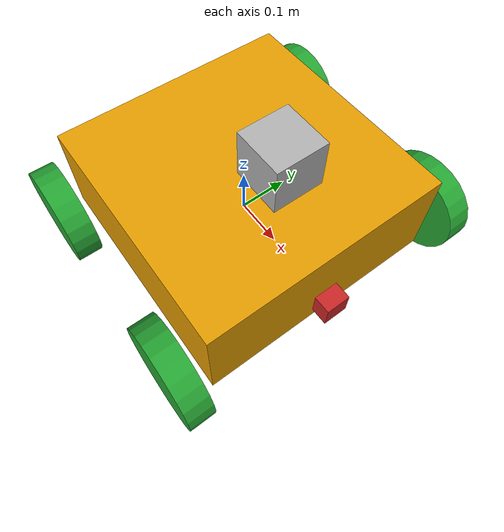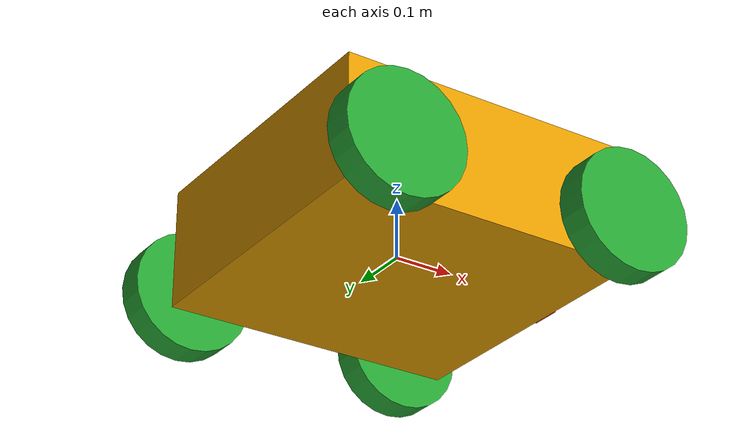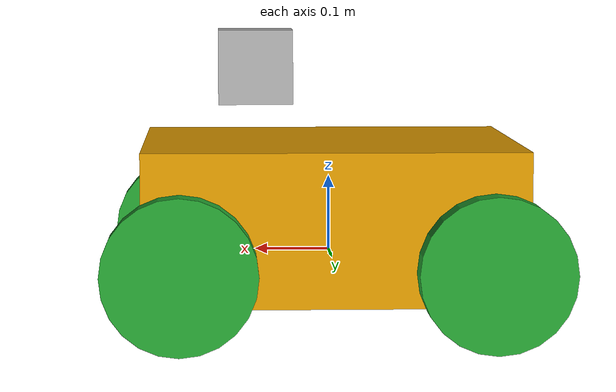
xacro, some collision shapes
<?xml version='1.0'?>

<robot name="atom" xmlns:xacro="http://www.ros.org/wiki/xacro">
	<xacro:property name="robot_name" value="atom" />
	<xacro:property name="robot_chassis_mass" value="15"/>
	<xacro:property name="robot_chassis_length" value="0.2"/>
	<xacro:property name="robot_chassis_radius" value="0.25"/>
	<xacro:property name="robot_caster_wheel_radius" value="0.05"/>
	<xacro:property name="robot_caster_wheel_radius_collision" value="0.0499"/>

	<xacro:property name="robot_wheel_mass" value="5"/>
	<xacro:property name="robot_wheel_length" value="0.05"/>
	<xacro:property name="robot_wheel_radius" value="0.1"/>

	<xacro:property name="camera_mass" value="0.1"/>
	<xacro:property name="hokoyu_mass" value="1e-5"/>

	<!-- Make Chassis of Bot -->
	<link name="base_link">
		<pose>0 0 0.1 0 0 0</pose>

		<inertial>
			<mass value="${robot_chassis_mass}"/>
      		<origin xyz="0.0 0 0" rpy=" 0 0 0"/>

      		<inertia
      			ixx="0.147116667" ixy="0" ixz="0"
      			iyy="0.334951167" iyz="0"
      			izz="0.3978345"
      		/>
		</inertial>

		<collision name="collision">
			<origin xyz="0 0 0.05" rpy=" 0 0 0"/>
			<geometry>
				<box size="0.5 0.5 0.2"/>
			</geometry>
		</collision>

		<visual name="chassis_visual">
			<origin xyz="0 0 0.05" rpy=" 0 0 0"/>
			<geometry>
				<box size="0.5 0.5 0.2"/>
			</geometry>

		</visual>

	</link>

	<!-- Right Wheel Back -->
	<link name="right_wheel_back">
		<inertial>
			<mass value="${robot_wheel_mass}"/>
			<origin xyz="0 0 0" rpy="0 1.5707 1.5707"/>
			<inertia
				ixx="0.1" ixy="0.0" ixz="0.0"
				iyy="0.1" iyz="0.0"
				izz="0.1"
			/>
		</inertial>

		<visual>
			<origin xyz="0 0 0" rpy="0 1.5707 1.5707"/>
			<geometry>
				<cylinder radius="${robot_wheel_radius}" length="${robot_wheel_length}"/>
			</geometry>
		</visual>

		<collision>
			<origin xyz="0 0 0" rpy="0 1.5707 1.5707"/>
			<geometry>
				<cylinder radius="${robot_wheel_radius}" length="${robot_wheel_length}"/>
			</geometry>
		</collision>

	</link>

	<!-- Right Wheel Front-->
	<link name="right_wheel_front">
		<inertial>
			<mass value="${robot_wheel_mass}"/>
			<origin xyz="0 0 0" rpy="0 1.5707 1.5707"/>
			<inertia
				ixx="0.1" ixy="0.0" ixz="0.0"
				iyy="0.1" iyz="0.0"
				izz="0.1"
			/>
		</inertial>

		<visual>
			<origin xyz="0 0 0" rpy="0 1.5707 1.5707"/>
			<geometry>
				<cylinder radius="${robot_wheel_radius}" length="${robot_wheel_length}"/>
			</geometry>
		</visual>

		<collision>
			<origin xyz="0 0 0" rpy="0 1.5707 1.5707"/>
			<geometry>
				<cylinder radius="${robot_wheel_radius}" length="${robot_wheel_length}"/>
			</geometry>
		</collision>

	</link>

	<!-- Left wheel Back-->
	<link name="left_wheel_back">
		<inertial>
			<mass value="${robot_wheel_mass}"/>
			<origin xyz="0 0 0" rpy="0 1.5707 1.5707"/>
			<inertia
				ixx="0.1" ixy="0.0" ixz="0.0"
				iyy="0.1" iyz="0.0"
				izz="0.1"
			/>
		</inertial>

		<visual>
			<origin xyz="0 0 0" rpy="0 1.5707 1.5707"/>
			<geometry>
				<cylinder radius="${robot_wheel_radius}" length="${robot_wheel_length}"/>
			</geometry>
		</visual>

		<collision>
			<origin xyz="0 0 0" rpy="0 1.5707 1.5707"/>
			<geometry>
				<cylinder radius="${robot_wheel_radius}" length="${robot_wheel_length}"/>
			</geometry>
		</collision>

	</link>

	<!-- Left wheel Front-->
	<link name="left_wheel_front">
		<inertial>
			<mass value="${robot_wheel_mass}"/>
			<origin xyz="0 0 0" rpy="0 1.5707 1.5707"/>
			<inertia
				ixx="0.1" ixy="0.0" ixz="0.0"
				iyy="0.1" iyz="0.0"
				izz="0.1"
			/>
		</inertial>

		<visual>
			<origin xyz="0 0 0" rpy="0 1.5707 1.5707"/>
			<geometry>
				<cylinder radius="${robot_wheel_radius}" length="${robot_wheel_length}"/>
			</geometry>
		</visual>

		<collision>
			<origin xyz="0 0 0" rpy="0 1.5707 1.5707"/>
			<geometry>
				<cylinder radius="${robot_wheel_radius}" length="${robot_wheel_length}"/>
			</geometry>
		</collision>

	</link>

	<!-- Camera -->
	<link name="camera">
		<inertial>
			<mass value="${camera_mass}"/>
			<origin xyz="0 0 0" rpy="0 0 0"/>
			<inertia
		        ixx="1e-6" ixy="0.0" ixz="0.0"
		        iyy="1e-6" iyz="0.0"
		        izz="1e-6"
		      />
		</inertial>

		<visual>
			<origin xyz="0 0 0" rpy="0 0 0"/>
			<geometry>
				<box size="0.05 0.05 0.05"/>
			</geometry>
		</visual>

		<collision>
			<origin xyz="0 0 0" rpy="0 0 0"/>
			<geometry>
				<box size="0.05 0.05 0.05"/>
			</geometry>
		</collision>
	</link>

	<!-- Define Joints -->

	<!-- Right Wheel Joint Back-->
	<joint type="continuous" name="right_wheel_hinge_back">
	    <origin xyz="-0.2 -0.30 0" rpy="0 0 0" />
	    <parent link="base_link"/>
	    <child link="right_wheel_back" />
	    <axis xyz="0 1 0" rpy="0 0 0" />
	    <limit effort="10000" velocity="1000" />
	    <dynamics damping="1.0" friction="1.0" />
	</joint>

	<!-- Right Wheel Joint Front-->
	<joint type="continuous" name="right_wheel_hinge_front">
	    <origin xyz="0.2 -0.30 0" rpy="0 0 0" />
	    <parent link="base_link"/>
	    <child link="right_wheel_front" />
	    <axis xyz="0 1 0" rpy="0 0 0" />
	    <limit effort="10000" velocity="1000" />
	    <dynamics damping="1.0" friction="1.0" />
	</joint>

	<!-- Left Wheel Joint Back-->
	<joint type="continuous" name="left_wheel_hinge_back">
	    <origin xyz="-0.2 0.30 0" rpy="0 0 0" />
	    <parent link="base_link"/>
	    <child link="left_wheel_back" />
	    <axis xyz="0 1 0" rpy="0 0 0" />
	    <limit effort="10000" velocity="1000" />
	    <dynamics damping="1.0" friction="1.0" />
	</joint>

	<!-- Left Wheel Joint Front-->
	<joint type="continuous" name="left_wheel_hinge_front">
	    <origin xyz="0.2 0.30 0" rpy="0 0 0" />
	    <parent link="base_link"/>
	    <child link="left_wheel_front" />
	    <axis xyz="0 1 0" rpy="0 0 0" />
	    <limit effort="10000" velocity="1000" />
	    <dynamics damping="1.0" friction="1.0" />
	</joint>

	<!-- Camera Joint -->
	<joint name="camera_joint" type="fixed">
		<origin xyz="0.26 0 0" rpy="0 0 0" />
		<parent link="base_link"/>
		<child link="camera" />
		<axis xyz="0 1 0"/>
	</joint>

	<!-- imu joint -->
	<joint name="imu_joint" type="fixed">
	    <parent link="base_link"/>
	    <child link="imu_link"/>
	    <origin xyz="0.0 0 0.068" rpy="0 0 0"/>
        </joint>

        <!-- imu data -->
        <link name="imu_link"/>

	<!-- Hokuyo joint -->
	<joint name="hokuyo_joint" type="fixed">
	    <origin xyz="0.1 0 0.25" rpy="0 0 0"/>
	    <parent link="base_link"/>
	    <axis xyz="0 1 0" />
	    <child link="hokuyo_link"/>
	</joint>

	<!-- Hokuyo Laser -->
	<link name="hokuyo_link">
	    <collision>
	      <origin xyz="0 0 0" rpy="0 0 0"/>
	      <geometry>
		<box size="0.1 0.1 0.1"/>
	      </geometry>
	    </collision>

	    <visual>
	      <origin xyz="0 0 0" rpy="0 0 0"/>
	      <geometry>
		<mesh filename="package://atom/meshes/hokuyo.dae"/>
	      </geometry>
	    </visual>

	    <inertial>
	      <mass value="1e-5" />
	      <origin xyz="0 0 0" rpy="0 0 0"/>
	      <inertia ixx="1e-6" ixy="0" ixz="0" iyy="1e-6" iyz="0" izz="1e-6" />
	    </inertial>
	</link>

	<!-- Color of bot -->
	<gazebo reference="left_wheel_front">
		<material>Gazebo/Green</material>
		<kp>1000000.0</kp> <!-- kp and kd for rubber -->
		<kd>100.0</kd>
		<mu1>1.0</mu1>
		<mu2>1.0</mu2>
		<maxVel>1.0</maxVel>
		<minDepth>0.00</minDepth>
	</gazebo>

	<gazebo reference="left_wheel_back">
		<material>Gazebo/Green</material>
		<kp>1000000.0</kp> <!-- kp and kd for rubber -->
		<kd>100.0</kd>
		<mu1>1.0</mu1>
		<mu2>1.0</mu2>
		<maxVel>1.0</maxVel>
		<minDepth>0.00</minDepth>
	</gazebo>

	<gazebo reference="right_wheel_front">
		<material>Gazebo/Green</material>
		<kp>1000000.0</kp> <!-- kp and kd for rubber -->
		<kd>100.0</kd>
		<mu1>1.0</mu1>
		<mu2>1.0</mu2>
		<maxVel>1.0</maxVel>
		<minDepth>0.00</minDepth>
	</gazebo>
	<gazebo reference="right_wheel_back">
		<material>Gazebo/Green</material>
		<kp>1000000.0</kp> <!-- kp and kd for rubber -->
		<kd>100.0</kd>
		<mu1>1.0</mu1>
		<mu2>1.0</mu2>
		<maxVel>1.0</maxVel>
		<minDepth>0.00</minDepth>
	</gazebo>

	<gazebo reference="camera">
		d<material>Gazebo/Red</material>
	</gazebo>

	<gazebo reference="chassis">
		<material>Gazebo/Blue</material>
	</gazebo>

	<!-- Motor, Camera and Lidar Simulation -->
	<xacro:include filename="$(find atom)/urdf/atom.gazebo" />

</robot>
